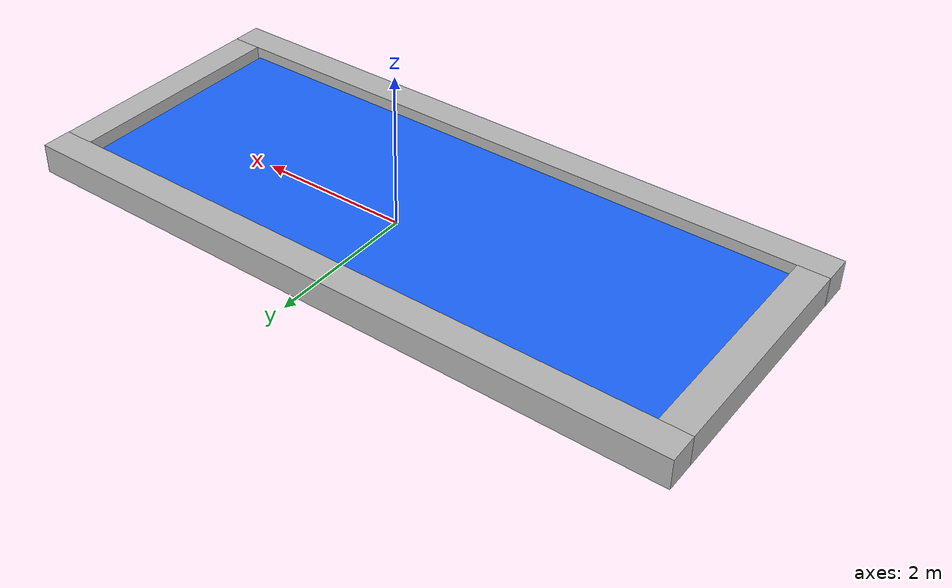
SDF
<?xml version='1.0'?>
<sdf version='1.6'>
  <model name='pisci'>
    <link name='link_0'>
      <pose frame=''>-4.4598 -0.29047 0.05 0 -0 0</pose>
      <inertial>
        <mass>1</mass>
        <inertia>
          <ixx>0.166667</ixx>
          <ixy>0</ixy>
          <ixz>0</ixz>
          <iyy>0.166667</iyy>
          <iyz>0</iyz>
          <izz>0.166667</izz>
        </inertia>
        <pose frame=''>0 0 0 0 -0 0</pose>
      </inertial>
      <self_collide>0</self_collide>
      <kinematic>0</kinematic>
      <gravity>1</gravity>
      <visual name='visual'>
        <pose frame=''>0 0 0 0 -0 0</pose>
        <geometry>
          <box>
            <size>0.4 3.1 0.4</size>
          </box>
        </geometry>
        <material>
          <lighting>1</lighting>
          <script>
         <uri>model://pisci/materials/scriptciment</uri>
				<uri>model://pisci/materials/textureciment</uri>
                <name>BrickBox/Diffuses</name>
          </script>
          <shader type='pixel'>
            <normal_map>__default__</normal_map>
          </shader>
        </material>
        <transparency>0</transparency>
        <cast_shadows>1</cast_shadows>
      </visual>
      <collision name='collision'>
        <laser_retro>0</laser_retro>
        <max_contacts>10</max_contacts>
        <pose frame=''>0 0 0 0 -0 0</pose>
        <geometry>
          <box>
            <size>0.4 3.1 0.4</size>
          </box>
        </geometry>
        <surface>
          <friction>
            <ode>
              <mu>1</mu>
              <mu2>1</mu2>
              <fdir1>0 0 0</fdir1>
              <slip1>0</slip1>
              <slip2>0</slip2>
            </ode>
            <torsional>
              <coefficient>1</coefficient>
              <patch_radius>0</patch_radius>
              <surface_radius>0</surface_radius>
              <use_patch_radius>1</use_patch_radius>
              <ode>
                <slip>0</slip>
              </ode>
            </torsional>
          </friction>
          <bounce>
            <restitution_coefficient>0</restitution_coefficient>
            <threshold>1e+06</threshold>
          </bounce>
          <contact>
            <collide_without_contact>0</collide_without_contact>
            <collide_without_contact_bitmask>1</collide_without_contact_bitmask>
            <collide_bitmask>1</collide_bitmask>
            <ode>
              <soft_cfm>0</soft_cfm>
              <soft_erp>0.2</soft_erp>
              <kp>1e+13</kp>
              <kd>1</kd>
              <max_vel>0.01</max_vel>
              <min_depth>0</min_depth>
            </ode>
            <bullet>
              <split_impulse>1</split_impulse>
              <split_impulse_penetration_threshold>-0.01</split_impulse_penetration_threshold>
              <soft_cfm>0</soft_cfm>
              <soft_erp>0.2</soft_erp>
              <kp>1e+13</kp>
              <kd>1</kd>
            </bullet>
          </contact>
        </surface>
      </collision>
    </link>
    <link name='link_0_clone'>
      <pose frame=''>4.13689 -0.29047 0.05 0 -0 0</pose>
      <inertial>
        <mass>1</mass>
        <inertia>
          <ixx>0.166667</ixx>
          <ixy>0</ixy>
          <ixz>0</ixz>
          <iyy>0.166667</iyy>
          <iyz>0</iyz>
          <izz>0.166667</izz>
        </inertia>
        <pose frame=''>0 0 0 0 -0 0</pose>
      </inertial>
      <self_collide>0</self_collide>
      <kinematic>0</kinematic>
      <visual name='visual'>
        <pose frame=''>0 0 0 0 -0 0</pose>
        <geometry>
          <box>
            <size>0.4 3.1 0.4</size>
          </box>
        </geometry>
        <material>
          <lighting>1</lighting>
          <script>
           	<uri>model://pisci/materials/scripts</uri>
				<uri>model://pisci/materials/textures</uri>
                <name>BrickBox/Diffuses</name>
          </script>
          <shader type='pixel'>
            <normal_map>__default__</normal_map>
          </shader>

        </material>
        <transparency>0</transparency>
        <cast_shadows>1</cast_shadows>
      </visual>
      <collision name='collision'>
        <laser_retro>0</laser_retro>
        <max_contacts>10</max_contacts>
        <pose frame=''>0 0 0 0 -0 0</pose>
        <geometry>
          <box>
            <size>0.4 3.1 0.4</size>
          </box>
        </geometry>
        <surface>
          <friction>
            <ode>
              <mu>1</mu>
              <mu2>1</mu2>
              <fdir1>0 0 0</fdir1>
              <slip1>0</slip1>
              <slip2>0</slip2>
            </ode>
            <torsional>
              <coefficient>1</coefficient>
              <patch_radius>0</patch_radius>
              <surface_radius>0</surface_radius>
              <use_patch_radius>1</use_patch_radius>
              <ode>
                <slip>0</slip>
              </ode>
            </torsional>
          </friction>
          <bounce>
            <restitution_coefficient>0</restitution_coefficient>
            <threshold>1e+06</threshold>
          </bounce>
          <contact>
            <collide_without_contact>0</collide_without_contact>
            <collide_without_contact_bitmask>1</collide_without_contact_bitmask>
            <collide_bitmask>1</collide_bitmask>
            <ode>
              <soft_cfm>0</soft_cfm>
              <soft_erp>0.2</soft_erp>
              <kp>1e+13</kp>
              <kd>1</kd>
              <max_vel>0.01</max_vel>
              <min_depth>0</min_depth>
            </ode>
            <bullet>
              <split_impulse>1</split_impulse>
              <split_impulse_penetration_threshold>-0.01</split_impulse_penetration_threshold>
              <soft_cfm>0</soft_cfm>
              <soft_erp>0.2</soft_erp>
              <kp>1e+13</kp>
              <kd>1</kd>
            </bullet>
          </contact>
        </surface>
      </collision>
    </link>
    <link name='link_0_clone_0'>
      <pose frame=''>-0.161748 -2.03604 0.05 0 -0 0</pose>
      <inertial>
        <mass>1</mass>
        <inertia>
          <ixx>0.166667</ixx>
          <ixy>0</ixy>
          <ixz>0</ixz>
          <iyy>0.166667</iyy>
          <iyz>0</iyz>
          <izz>0.166667</izz>
        </inertia>
        <pose frame=''>0 0 0 0 -0 0</pose>
      </inertial>
      <self_collide>0</self_collide>
      <kinematic>0</kinematic>
      <visual name='visual'>
        <pose frame=''>0 0 0 0 -0 0</pose>
        <geometry>
          <box>
            <size>9 0.4 0.4</size>
          </box>
        </geometry>
        <material>
          <lighting>1</lighting>
          <script>
           	<uri>model://pisci/materials/scriptciment</uri>
				<uri>model://pisci/materials/textureciment</uri>
                <name>BrickBox/Diffuses</name>
          </script>
          <shader type='pixel'>
            <normal_map>__default__</normal_map>
          </shader>
        </material>
        <transparency>0</transparency>
        <cast_shadows>1</cast_shadows>
      </visual>
      <collision name='collision'>
        <laser_retro>0</laser_retro>
        <max_contacts>10</max_contacts>
        <pose frame=''>0 0 0 0 -0 0</pose>
        <geometry>
          <box>
            <size>9 0.4 0.4</size>
          </box>
        </geometry>
        <surface>
          <friction>
            <ode>
              <mu>1</mu>
              <mu2>1</mu2>
              <fdir1>0 0 0</fdir1>
              <slip1>0</slip1>
              <slip2>0</slip2>
            </ode>
            <torsional>
              <coefficient>1</coefficient>
              <patch_radius>0</patch_radius>
              <surface_radius>0</surface_radius>
              <use_patch_radius>1</use_patch_radius>
              <ode>
                <slip>0</slip>
              </ode>
            </torsional>
          </friction>
          <bounce>
            <restitution_coefficient>0</restitution_coefficient>
            <threshold>1e+06</threshold>
          </bounce>
          <contact>
            <collide_without_contact>0</collide_without_contact>
            <collide_without_contact_bitmask>1</collide_without_contact_bitmask>
            <collide_bitmask>1</collide_bitmask>
            <ode>
              <soft_cfm>0</soft_cfm>
              <soft_erp>0.2</soft_erp>
              <kp>1e+13</kp>
              <kd>1</kd>
              <max_vel>0.01</max_vel>
              <min_depth>0</min_depth>
            </ode>
            <bullet>
              <split_impulse>1</split_impulse>
              <split_impulse_penetration_threshold>-0.01</split_impulse_penetration_threshold>
              <soft_cfm>0</soft_cfm>
              <soft_erp>0.2</soft_erp>
              <kp>1e+13</kp>
              <kd>1</kd>
            </bullet>
          </contact>
        </surface>
      </collision>
    </link>
    <link name='link_0_clone_0_clone'>
      <pose frame=''>-0.159592 1.45487 0.05 0 -0 0</pose>
      <inertial>
        <mass>1</mass>
        <inertia>
          <ixx>0.166667</ixx>
          <ixy>0</ixy>
          <ixz>0</ixz>
          <iyy>0.166667</iyy>
          <iyz>0</iyz>
          <izz>0.166667</izz>
        </inertia>
        <pose frame=''>0 0 0 0 -0 0</pose>
      </inertial>
      <self_collide>0</self_collide>
      <kinematic>0</kinematic>
      <visual name='visual'>
        <pose frame=''>0 0 0 0 -0 0</pose>
        <geometry>
          <box>
            <size>9 0.4 0.4</size>
          </box>
        </geometry>
        <material>
          <lighting>1</lighting>
          <script>
          	<uri>model://pisci/materials/scriptciment</uri>
				<uri>model://pisci/materials/textureciment</uri>
                <name>BrickBox/Diffuses</name>
          </script>
          <shader type='pixel'>
            <normal_map>__default__</normal_map>
          </shader>

        </material>
        <transparency>0</transparency>
        <cast_shadows>1</cast_shadows>
      </visual>
      <collision name='collision'>
        <laser_retro>0</laser_retro>
        <max_contacts>10</max_contacts>
        <pose frame=''>0 0 0 0 -0 0</pose>
        <geometry>
          <box>
            <size>9 0.4 0.4</size>
          </box>
        </geometry>
        <surface>
          <friction>
            <ode>
              <mu>1</mu>
              <mu2>1</mu2>
              <fdir1>0 0 0</fdir1>
              <slip1>0</slip1>
              <slip2>0</slip2>
            </ode>
            <torsional>
              <coefficient>1</coefficient>
              <patch_radius>0</patch_radius>
              <surface_radius>0</surface_radius>
              <use_patch_radius>1</use_patch_radius>
              <ode>
                <slip>0</slip>
              </ode>
            </torsional>
          </friction>
          <bounce>
            <restitution_coefficient>0</restitution_coefficient>
            <threshold>1e+06</threshold>
          </bounce>
          <contact>
            <collide_without_contact>0</collide_without_contact>
            <collide_without_contact_bitmask>1</collide_without_contact_bitmask>
            <collide_bitmask>1</collide_bitmask>
            <ode>
              <soft_cfm>0</soft_cfm>
              <soft_erp>0.2</soft_erp>
              <kp>1e+13</kp>
              <kd>1</kd>
              <max_vel>0.01</max_vel>
              <min_depth>0</min_depth>
            </ode>
            <bullet>
              <split_impulse>1</split_impulse>
              <split_impulse_penetration_threshold>-0.01</split_impulse_penetration_threshold>
              <soft_cfm>0</soft_cfm>
              <soft_erp>0.2</soft_erp>
              <kp>1e+13</kp>
              <kd>1</kd>
            </bullet>
          </contact>
        </surface>
      </collision>
    </link>
    <link name='link_3'>
      <pose frame=''>-0.155 -0.293 0.05 0 -0 0</pose>
      <inertial>
        <mass>1</mass>
        <inertia>
          <ixx>0.166667</ixx>
          <ixy>0</ixy>
          <ixz>0</ixz>
          <iyy>0.166667</iyy>
          <iyz>0</iyz>
          <izz>0.166667</izz>
        </inertia>
        <pose frame=''>0 0 0 0 -0 0</pose>
      </inertial>
      <self_collide>0</self_collide>
      <kinematic>0</kinematic>
      <visual name='visual'>
        <pose frame=''>0 0 0 0 -0 0</pose>
        <geometry>
          <box>
            <size>8.1 3.07 0.1</size>
          </box>
        </geometry>
        <material>
          <lighting>1</lighting>
          <script>
            	<uri>model://pisci/materials/scripts</uri>
				<uri>model://pisci/materials/textures</uri>
                <name>Piscina</name>
          </script>
          <ambient>0 0.5 1 1</ambient>
          <diffuse>0.1 0.4 1 1</diffuse>
          <specular>0 0.7 1 1</specular>
          <emissive>0 0.4 1 1</emissive>
          <shader type='pixel'>
            <normal_map>__default__</normal_map>
          </shader>

        </material>
        <transparency>0</transparency>
        <cast_shadows>1</cast_shadows>
      </visual>
      <collision name='collision'>
        <laser_retro>0</laser_retro>
        <max_contacts>10</max_contacts>
        <pose frame=''>0 0 0 0 -0 0</pose>
        <geometry>
          <box>
            <size>8.1 3.07 0.1</size>
          </box>
        </geometry>
        <surface>
          <friction>
            <ode>
              <mu>1</mu>
              <mu2>1</mu2>
              <fdir1>0 0 0</fdir1>
              <slip1>0</slip1>
              <slip2>0</slip2>
            </ode>
            <torsional>
              <coefficient>1</coefficient>
              <patch_radius>0</patch_radius>
              <surface_radius>0</surface_radius>
              <use_patch_radius>1</use_patch_radius>
              <ode>
                <slip>0</slip>
              </ode>
            </torsional>
          </friction>
          <bounce>
            <restitution_coefficient>0</restitution_coefficient>
            <threshold>1e+06</threshold>
          </bounce>
          <contact>
            <collide_without_contact>0</collide_without_contact>
            <collide_without_contact_bitmask>1</collide_without_contact_bitmask>
            <collide_bitmask>1</collide_bitmask>
            <ode>
              <soft_cfm>0</soft_cfm>
              <soft_erp>0.2</soft_erp>
              <kp>1e+13</kp>
              <kd>1</kd>
              <max_vel>0.01</max_vel>
              <min_depth>0</min_depth>
            </ode>
            <bullet>
              <split_impulse>1</split_impulse>
              <split_impulse_penetration_threshold>-0.01</split_impulse_penetration_threshold>
              <soft_cfm>0</soft_cfm>
              <soft_erp>0.2</soft_erp>
              <kp>1e+13</kp>
              <kd>1</kd>
            </bullet>
          </contact>
        </surface>
      </collision>
    </link>
    <joint name='link_0_JOINT_0' type='revolute'>
      <parent>link_0</parent>
      <child>link_0_clone_0</child>
      <pose frame=''>0 0 -0 0 -0 0</pose>
      <axis>
        <xyz>1 0 0</xyz>
        <use_parent_model_frame>0</use_parent_model_frame>
        <limit>
          <lower>-1.79769e+308</lower>
          <upper>1.79769e+308</upper>
          <effort>-1</effort>
          <velocity>-1</velocity>
        </limit>
        <dynamics>
          <spring_reference>0</spring_reference>
          <spring_stiffness>0</spring_stiffness>
          <damping>0</damping>
          <friction>0</friction>
        </dynamics>
      </axis>
      <physics>
        <ode>
          <limit>
            <cfm>0</cfm>
            <erp>0.2</erp>
          </limit>
          <suspension>
            <cfm>0</cfm>
            <erp>0.2</erp>
          </suspension>
        </ode>
      </physics>
    </joint>
    <joint name='link_0_clone_0_clone_JOINT_4' type='revolute'>
      <parent>link_0_clone_0_clone</parent>
      <child>link_3</child>
      <pose frame=''>0 0 0 0 -0 0</pose>
      <axis>
        <xyz>1 0 0</xyz>
        <use_parent_model_frame>0</use_parent_model_frame>
        <limit>
          <lower>-1.79769e+308</lower>
          <upper>1.79769e+308</upper>
          <effort>-1</effort>
          <velocity>-1</velocity>
        </limit>
        <dynamics>
          <spring_reference>0</spring_reference>
          <spring_stiffness>0</spring_stiffness>
          <damping>0</damping>
          <friction>0</friction>
        </dynamics>
      </axis>
      <physics>
        <ode>
          <limit>
            <cfm>0</cfm>
            <erp>0.2</erp>
          </limit>
          <suspension>
            <cfm>0</cfm>
            <erp>0.2</erp>
          </suspension>
        </ode>
      </physics>
    </joint>
    <joint name='link_0_clone_JOINT_1' type='revolute'>
      <parent>link_0_clone</parent>
      <child>link_0_clone_0</child>
      <pose frame=''>0 0 0 0 -0 0</pose>
      <axis>
        <xyz>1 0 0</xyz>
        <use_parent_model_frame>0</use_parent_model_frame>
        <limit>
          <lower>-1.79769e+308</lower>
          <upper>1.79769e+308</upper>
          <effort>-1</effort>
          <velocity>-1</velocity>
        </limit>
        <dynamics>
          <spring_reference>0</spring_reference>
          <spring_stiffness>0</spring_stiffness>
          <damping>0</damping>
          <friction>0</friction>
        </dynamics>
      </axis>
      <physics>
        <ode>
          <limit>
            <cfm>0</cfm>
            <erp>0.2</erp>
          </limit>
          <suspension>
            <cfm>0</cfm>
            <erp>0.2</erp>
          </suspension>
        </ode>
      </physics>
    </joint>
    <joint name='link_3_JOINT_3' type='revolute'>
      <parent>link_3</parent>
      <child>link_0_clone_0</child>
      <pose frame=''>0 0 0 0 -0 0</pose>
      <axis>
        <xyz>1 0 0</xyz>
        <use_parent_model_frame>0</use_parent_model_frame>
        <limit>
          <lower>-1.79769e+308</lower>
          <upper>1.79769e+308</upper>
          <effort>-1</effort>
          <velocity>-1</velocity>
        </limit>
        <dynamics>
          <spring_reference>0</spring_reference>
          <spring_stiffness>0</spring_stiffness>
          <damping>0</damping>
          <friction>0</friction>
        </dynamics>
      </axis>
      <physics>
        <ode>
          <limit>
            <cfm>0</cfm>
            <erp>0.2</erp>
          </limit>
          <suspension>
            <cfm>0</cfm>
            <erp>0.2</erp>
          </suspension>
        </ode>
      </physics>
    </joint>
    <static>1</static>
    <allow_auto_disable>1</allow_auto_disable>
  </model>
</sdf>
